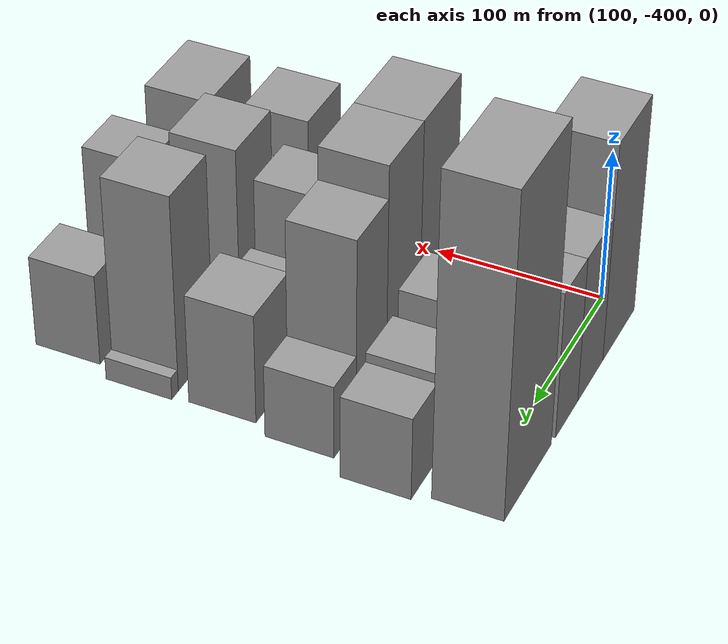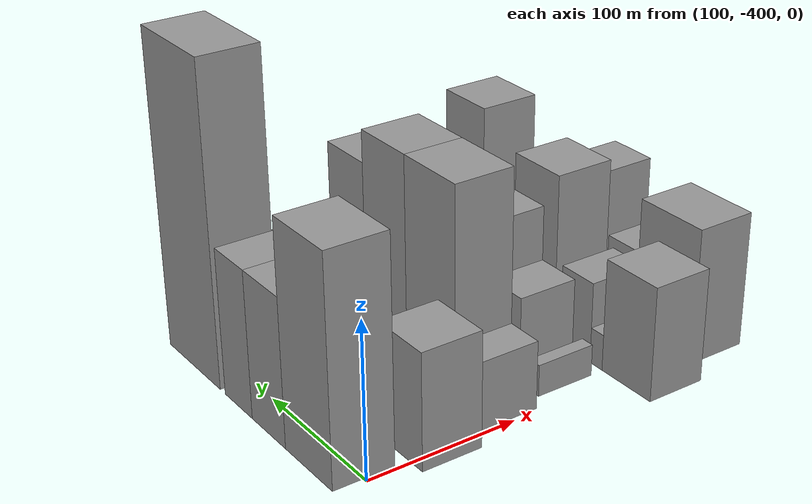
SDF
<sdf version="1.6">
 <world name="default">
  <model name="building_12">
   <static>1</static>
   <pose>100.0000 -373.0268 0 0.000000 0.000000 0.000000</pose>
   <link name="link">
    <pose>0 0 72.00 0 0 0</pose>
    <collision name="collision"><geometry><box><size>40.0000 49.0535 144.0000</size></box></geometry></collision>
    <visual name="visual">
     <cast_shadows>0</cast_shadows>
     <geometry><box><size>40.0000 49.0535 144.0000</size></box></geometry>
     <material>
      <script>
       <uri>model://grey_wall/materials/scripts</uri>
       <uri>model://grey_wall/materials/textures</uri>
       <name>vrc/grey_wall</name>
      </script>
     </material>
    </visual>
   </link>
  </model>
  <model name="building_13">
   <static>1</static>
   <pose>100.0000 -329.8094 0 0.000000 0.000000 0.000000</pose>
   <link name="link">
    <pose>0 0 48.00 0 0 0</pose>
    <collision name="collision"><geometry><box><size>40.0000 37.3814 96.0000</size></box></geometry></collision>
    <visual name="visual">
     <cast_shadows>0</cast_shadows>
     <geometry><box><size>40.0000 37.3814 96.0000</size></box></geometry>
     <material>
      <script>
       <uri>model://grey_wall/materials/scripts</uri>
       <uri>model://grey_wall/materials/textures</uri>
       <name>vrc/grey_wall</name>
      </script>
     </material>
    </visual>
   </link>
  </model>
  <model name="building_14">
   <static>1</static>
   <pose>100.0000 -295.0552 0 0.000000 0.000000 0.000000</pose>
   <link name="link">
    <pose>0 0 48.00 0 0 0</pose>
    <collision name="collision"><geometry><box><size>40.0000 32.1269 96.0000</size></box></geometry></collision>
    <visual name="visual">
     <cast_shadows>0</cast_shadows>
     <geometry><box><size>40.0000 32.1269 96.0000</size></box></geometry>
     <material>
      <script>
       <uri>model://grey_wall/materials/scripts</uri>
       <uri>model://grey_wall/materials/textures</uri>
       <name>vrc/grey_wall</name>
      </script>
     </material>
    </visual>
   </link>
  </model>
  <model name="building_15">
   <static>1</static>
   <pose>100.0000 -240.8266 0 0.000000 0.000000 0.000000</pose>
   <link name="link">
    <pose>0 0 103.50 0 0 0</pose>
    <collision name="collision"><geometry><box><size>40.0000 64.3303 207.0000</size></box></geometry></collision>
    <visual name="visual">
     <cast_shadows>0</cast_shadows>
     <geometry><box><size>40.0000 64.3303 207.0000</size></box></geometry>
     <material>
      <script>
       <uri>model://grey_wall/materials/scripts</uri>
       <uri>model://grey_wall/materials/textures</uri>
       <name>vrc/grey_wall</name>
      </script>
     </material>
    </visual>
   </link>
  </model>
  <model name="building_50">
   <static>1</static>
   <pose>149.0000 -390.0981 0 0.000000 0.000000 0.000000</pose>
   <link name="link">
    <pose>0 0 37.50 0 0 0</pose>
    <collision name="collision"><geometry><box><size>40.0000 41.4963 75.0000</size></box></geometry></collision>
    <visual name="visual">
     <cast_shadows>0</cast_shadows>
     <geometry><box><size>40.0000 41.4963 75.0000</size></box></geometry>
     <material>
      <script>
       <uri>model://grey_wall/materials/scripts</uri>
       <uri>model://grey_wall/materials/textures</uri>
       <name>vrc/grey_wall</name>
      </script>
     </material>
    </visual>
   </link>
  </model>
  <model name="building_51">
   <static>1</static>
   <pose>149.0000 -362.1024 0 0.000000 0.000000 0.000000</pose>
   <link name="link">
    <pose>0 0 9.00 0 0 0</pose>
    <collision name="collision"><geometry><box><size>40.0000 8.4950 18.0000</size></box></geometry></collision>
    <visual name="visual">
     <cast_shadows>0</cast_shadows>
     <geometry><box><size>40.0000 8.4950 18.0000</size></box></geometry>
     <material>
      <script>
       <uri>model://grey_wall/materials/scripts</uri>
       <uri>model://grey_wall/materials/textures</uri>
       <name>vrc/grey_wall</name>
      </script>
     </material>
    </visual>
   </link>
  </model>
  <model name="building_52">
   <static>1</static>
   <pose>149.0000 -341.7077 0 0.000000 0.000000 0.000000</pose>
   <link name="link">
    <pose>0 0 22.50 0 0 0</pose>
    <collision name="collision"><geometry><box><size>40.0000 26.2945 45.0000</size></box></geometry></collision>
    <visual name="visual">
     <cast_shadows>0</cast_shadows>
     <geometry><box><size>40.0000 26.2945 45.0000</size></box></geometry>
     <material>
      <script>
       <uri>model://grey_wall/materials/scripts</uri>
       <uri>model://grey_wall/materials/textures</uri>
       <name>vrc/grey_wall</name>
      </script>
     </material>
    </visual>
   </link>
  </model>
  <model name="building_53">
   <static>1</static>
   <pose>149.0000 -319.5899 0 0.000000 0.000000 0.000000</pose>
   <link name="link">
    <pose>0 0 16.50 0 0 0</pose>
    <collision name="collision"><geometry><box><size>40.0000 17.9410 33.0000</size></box></geometry></collision>
    <visual name="visual">
     <cast_shadows>0</cast_shadows>
     <geometry><box><size>40.0000 17.9410 33.0000</size></box></geometry>
     <material>
      <script>
       <uri>model://grey_wall/materials/scripts</uri>
       <uri>model://grey_wall/materials/textures</uri>
       <name>vrc/grey_wall</name>
      </script>
     </material>
    </visual>
   </link>
  </model>
  <model name="building_54">
   <static>1</static>
   <pose>149.0000 -292.4086 0 0.000000 0.000000 0.000000</pose>
   <link name="link">
    <pose>0 0 36.00 0 0 0</pose>
    <collision name="collision"><geometry><box><size>40.0000 36.4217 72.0000</size></box></geometry></collision>
    <visual name="visual">
     <cast_shadows>0</cast_shadows>
     <geometry><box><size>40.0000 36.4217 72.0000</size></box></geometry>
     <material>
      <script>
       <uri>model://grey_wall/materials/scripts</uri>
       <uri>model://grey_wall/materials/textures</uri>
       <name>vrc/grey_wall</name>
      </script>
     </material>
    </visual>
   </link>
  </model>
  <model name="building_55">
   <static>1</static>
   <pose>149.0000 -270.7496 0 0.000000 0.000000 0.000000</pose>
   <link name="link">
    <pose>0 0 7.50 0 0 0</pose>
    <collision name="collision"><geometry><box><size>40.0000 6.8963 15.0000</size></box></geometry></collision>
    <visual name="visual">
     <cast_shadows>0</cast_shadows>
     <geometry><box><size>40.0000 6.8963 15.0000</size></box></geometry>
     <material>
      <script>
       <uri>model://grey_wall/materials/scripts</uri>
       <uri>model://grey_wall/materials/textures</uri>
       <name>vrc/grey_wall</name>
      </script>
     </material>
    </visual>
   </link>
  </model>
  <model name="building_56">
   <static>1</static>
   <pose>149.0000 -250.5568 0 0.000000 0.000000 0.000000</pose>
   <link name="link">
    <pose>0 0 30.00 0 0 0</pose>
    <collision name="collision"><geometry><box><size>40.0000 33.4891 60.0000</size></box></geometry></collision>
    <visual name="visual">
     <cast_shadows>0</cast_shadows>
     <geometry><box><size>40.0000 33.4891 60.0000</size></box></geometry>
     <material>
      <script>
       <uri>model://grey_wall/materials/scripts</uri>
       <uri>model://grey_wall/materials/textures</uri>
       <name>vrc/grey_wall</name>
      </script>
     </material>
    </visual>
   </link>
  </model>
  <model name="building_57">
   <static>1</static>
   <pose>149.0000 -218.5528 0 0.000000 0.000000 0.000000</pose>
   <link name="link">
    <pose>0 0 27.00 0 0 0</pose>
    <collision name="collision"><geometry><box><size>40.0000 30.5189 54.0000</size></box></geometry></collision>
    <visual name="visual">
     <cast_shadows>0</cast_shadows>
     <geometry><box><size>40.0000 30.5189 54.0000</size></box></geometry>
     <material>
      <script>
       <uri>model://grey_wall/materials/scripts</uri>
       <uri>model://grey_wall/materials/textures</uri>
       <name>vrc/grey_wall</name>
      </script>
     </material>
    </visual>
   </link>
  </model>
  <model name="building_98">
   <static>1</static>
   <pose>198.0000 -385.2307 0 0.000000 0.000000 0.000000</pose>
   <link name="link">
    <pose>0 0 22.50 0 0 0</pose>
    <collision name="collision"><geometry><box><size>40.0000 24.6811 45.0000</size></box></geometry></collision>
    <visual name="visual">
     <cast_shadows>0</cast_shadows>
     <geometry><box><size>40.0000 24.6811 45.0000</size></box></geometry>
     <material>
      <script>
       <uri>model://grey_wall/materials/scripts</uri>
       <uri>model://grey_wall/materials/textures</uri>
       <name>vrc/grey_wall</name>
      </script>
     </material>
    </visual>
   </link>
  </model>
  <model name="building_99">
   <static>1</static>
   <pose>198.0000 -348.5359 0 0.000000 0.000000 0.000000</pose>
   <link name="link">
    <pose>0 0 72.00 0 0 0</pose>
    <collision name="collision"><geometry><box><size>40.0000 48.7085 144.0000</size></box></geometry></collision>
    <visual name="visual">
     <cast_shadows>0</cast_shadows>
     <geometry><box><size>40.0000 48.7085 144.0000</size></box></geometry>
     <material>
      <script>
       <uri>model://grey_wall/materials/scripts</uri>
       <uri>model://grey_wall/materials/textures</uri>
       <name>vrc/grey_wall</name>
      </script>
     </material>
    </visual>
   </link>
  </model>
  <model name="building_100">
   <static>1</static>
   <pose>198.0000 -302.3318 0 0.000000 0.000000 0.000000</pose>
   <link name="link">
    <pose>0 0 72.00 0 0 0</pose>
    <collision name="collision"><geometry><box><size>40.0000 43.6997 144.0000</size></box></geometry></collision>
    <visual name="visual">
     <cast_shadows>0</cast_shadows>
     <geometry><box><size>40.0000 43.6997 144.0000</size></box></geometry>
     <material>
      <script>
       <uri>model://grey_wall/materials/scripts</uri>
       <uri>model://grey_wall/materials/textures</uri>
       <name>vrc/grey_wall</name>
      </script>
     </material>
    </visual>
   </link>
  </model>
  <model name="building_101">
   <static>1</static>
   <pose>198.0000 -261.3246 0 0.000000 0.000000 0.000000</pose>
   <link name="link">
    <pose>0 0 61.50 0 0 0</pose>
    <collision name="collision"><geometry><box><size>40.0000 38.3147 123.0000</size></box></geometry></collision>
    <visual name="visual">
     <cast_shadows>0</cast_shadows>
     <geometry><box><size>40.0000 38.3147 123.0000</size></box></geometry>
     <material>
      <script>
       <uri>model://grey_wall/materials/scripts</uri>
       <uri>model://grey_wall/materials/textures</uri>
       <name>vrc/grey_wall</name>
      </script>
     </material>
    </visual>
   </link>
  </model>
  <model name="building_102">
   <static>1</static>
   <pose>198.0000 -228.6058 0 0.000000 0.000000 0.000000</pose>
   <link name="link">
    <pose>0 0 24.00 0 0 0</pose>
    <collision name="collision"><geometry><box><size>40.0000 27.1228 48.0000</size></box></geometry></collision>
    <visual name="visual">
     <cast_shadows>0</cast_shadows>
     <geometry><box><size>40.0000 27.1228 48.0000</size></box></geometry>
     <material>
      <script>
       <uri>model://grey_wall/materials/scripts</uri>
       <uri>model://grey_wall/materials/textures</uri>
       <name>vrc/grey_wall</name>
      </script>
     </material>
    </visual>
   </link>
  </model>
  <model name="building_148">
   <static>1</static>
   <pose>247.0000 -383.6363 0 0.000000 0.000000 0.000000</pose>
   <link name="link">
    <pose>0 0 10.50 0 0 0</pose>
    <collision name="collision"><geometry><box><size>40.0000 9.0646 21.0000</size></box></geometry></collision>
    <visual name="visual">
     <cast_shadows>0</cast_shadows>
     <geometry><box><size>40.0000 9.0646 21.0000</size></box></geometry>
     <material>
      <script>
       <uri>model://grey_wall/materials/scripts</uri>
       <uri>model://grey_wall/materials/textures</uri>
       <name>vrc/grey_wall</name>
      </script>
     </material>
    </visual>
   </link>
  </model>
  <model name="building_149">
   <static>1</static>
   <pose>247.0000 -354.8018 0 0.000000 0.000000 0.000000</pose>
   <link name="link">
    <pose>0 0 28.50 0 0 0</pose>
    <collision name="collision"><geometry><box><size>40.0000 30.6044 57.0000</size></box></geometry></collision>
    <visual name="visual">
     <cast_shadows>0</cast_shadows>
     <geometry><box><size>40.0000 30.6044 57.0000</size></box></geometry>
     <material>
      <script>
       <uri>model://grey_wall/materials/scripts</uri>
       <uri>model://grey_wall/materials/textures</uri>
       <name>vrc/grey_wall</name>
      </script>
     </material>
    </visual>
   </link>
  </model>
  <model name="building_150">
   <static>1</static>
   <pose>247.0000 -321.1986 0 0.000000 0.000000 0.000000</pose>
   <link name="link">
    <pose>0 0 46.50 0 0 0</pose>
    <collision name="collision"><geometry><box><size>40.0000 36.6021 93.0000</size></box></geometry></collision>
    <visual name="visual">
     <cast_shadows>0</cast_shadows>
     <geometry><box><size>40.0000 36.6021 93.0000</size></box></geometry>
     <material>
      <script>
       <uri>model://grey_wall/materials/scripts</uri>
       <uri>model://grey_wall/materials/textures</uri>
       <name>vrc/grey_wall</name>
      </script>
     </material>
    </visual>
   </link>
  </model>
  <model name="building_151">
   <static>1</static>
   <pose>247.0000 -283.9694 0 0.000000 0.000000 0.000000</pose>
   <link name="link">
    <pose>0 0 25.50 0 0 0</pose>
    <collision name="collision"><geometry><box><size>40.0000 27.8563 51.0000</size></box></geometry></collision>
    <visual name="visual">
     <cast_shadows>0</cast_shadows>
     <geometry><box><size>40.0000 27.8563 51.0000</size></box></geometry>
     <material>
      <script>
       <uri>model://grey_wall/materials/scripts</uri>
       <uri>model://grey_wall/materials/textures</uri>
       <name>vrc/grey_wall</name>
      </script>
     </material>
    </visual>
   </link>
  </model>
  <model name="building_152">
   <static>1</static>
   <pose>247.0000 -242.7623 0 0.000000 0.000000 0.000000</pose>
   <link name="link">
    <pose>0 0 36.00 0 0 0</pose>
    <collision name="collision"><geometry><box><size>40.0000 40.5579 72.0000</size></box></geometry></collision>
    <visual name="visual">
     <cast_shadows>0</cast_shadows>
     <geometry><box><size>40.0000 40.5579 72.0000</size></box></geometry>
     <material>
      <script>
       <uri>model://grey_wall/materials/scripts</uri>
       <uri>model://grey_wall/materials/textures</uri>
       <name>vrc/grey_wall</name>
      </script>
     </material>
    </visual>
   </link>
  </model>
  <model name="building_194">
   <static>1</static>
   <pose>296.0000 -409.0235 0 0.000000 0.000000 0.000000</pose>
   <link name="link">
    <pose>0 0 37.50 0 0 0</pose>
    <collision name="collision"><geometry><box><size>40.0000 42.9086 75.0000</size></box></geometry></collision>
    <visual name="visual">
     <cast_shadows>0</cast_shadows>
     <geometry><box><size>40.0000 42.9086 75.0000</size></box></geometry>
     <material>
      <script>
       <uri>model://grey_wall/materials/scripts</uri>
       <uri>model://grey_wall/materials/textures</uri>
       <name>vrc/grey_wall</name>
      </script>
     </material>
    </visual>
   </link>
  </model>
  <model name="building_195">
   <static>1</static>
   <pose>296.0000 -382.0107 0 0.000000 0.000000 0.000000</pose>
   <link name="link">
    <pose>0 0 12.00 0 0 0</pose>
    <collision name="collision"><geometry><box><size>40.0000 11.1169 24.0000</size></box></geometry></collision>
    <visual name="visual">
     <cast_shadows>0</cast_shadows>
     <geometry><box><size>40.0000 11.1169 24.0000</size></box></geometry>
     <material>
      <script>
       <uri>model://grey_wall/materials/scripts</uri>
       <uri>model://grey_wall/materials/textures</uri>
       <name>vrc/grey_wall</name>
      </script>
     </material>
    </visual>
   </link>
  </model>
  <model name="building_196">
   <static>1</static>
   <pose>296.0000 -362.2135 0 0.000000 0.000000 0.000000</pose>
   <link name="link">
    <pose>0 0 27.00 0 0 0</pose>
    <collision name="collision"><geometry><box><size>40.0000 28.4775 54.0000</size></box></geometry></collision>
    <visual name="visual">
     <cast_shadows>0</cast_shadows>
     <geometry><box><size>40.0000 28.4775 54.0000</size></box></geometry>
     <material>
      <script>
       <uri>model://grey_wall/materials/scripts</uri>
       <uri>model://grey_wall/materials/textures</uri>
       <name>vrc/grey_wall</name>
      </script>
     </material>
    </visual>
   </link>
  </model>
  <model name="building_197">
   <static>1</static>
   <pose>296.0000 -321.1158 0 0.000000 0.000000 0.000000</pose>
   <link name="link">
    <pose>0 0 55.50 0 0 0</pose>
    <collision name="collision"><geometry><box><size>40.0000 41.7178 111.0000</size></box></geometry></collision>
    <visual name="visual">
     <cast_shadows>0</cast_shadows>
     <geometry><box><size>40.0000 41.7178 111.0000</size></box></geometry>
     <material>
      <script>
       <uri>model://grey_wall/materials/scripts</uri>
       <uri>model://grey_wall/materials/textures</uri>
       <name>vrc/grey_wall</name>
      </script>
     </material>
    </visual>
   </link>
  </model>
  <model name="building_198">
   <static>1</static>
   <pose>296.0000 -295.8527 0 0.000000 0.000000 0.000000</pose>
   <link name="link">
    <pose>0 0 10.50 0 0 0</pose>
    <collision name="collision"><geometry><box><size>40.0000 8.8083 21.0000</size></box></geometry></collision>
    <visual name="visual">
     <cast_shadows>0</cast_shadows>
     <geometry><box><size>40.0000 8.8083 21.0000</size></box></geometry>
     <material>
      <script>
       <uri>model://grey_wall/materials/scripts</uri>
       <uri>model://grey_wall/materials/textures</uri>
       <name>vrc/grey_wall</name>
      </script>
     </material>
    </visual>
   </link>
  </model>
  <model name="building_199">
   <static>1</static>
   <pose>296.0000 -278.1027 0 0.000000 0.000000 0.000000</pose>
   <link name="link">
    <pose>0 0 19.50 0 0 0</pose>
    <collision name="collision"><geometry><box><size>40.0000 20.6919 39.0000</size></box></geometry></collision>
    <visual name="visual">
     <cast_shadows>0</cast_shadows>
     <geometry><box><size>40.0000 20.6919 39.0000</size></box></geometry>
     <material>
      <script>
       <uri>model://grey_wall/materials/scripts</uri>
       <uri>model://grey_wall/materials/textures</uri>
       <name>vrc/grey_wall</name>
      </script>
     </material>
    </visual>
   </link>
  </model>
  <model name="building_200">
   <static>1</static>
   <pose>296.0000 -247.6811 0 0.000000 0.000000 0.000000</pose>
   <link name="link">
    <pose>0 0 64.50 0 0 0</pose>
    <collision name="collision"><geometry><box><size>40.0000 40.1512 129.0000</size></box></geometry></collision>
    <visual name="visual">
     <cast_shadows>0</cast_shadows>
     <geometry><box><size>40.0000 40.1512 129.0000</size></box></geometry>
     <material>
      <script>
       <uri>model://grey_wall/materials/scripts</uri>
       <uri>model://grey_wall/materials/textures</uri>
       <name>vrc/grey_wall</name>
      </script>
     </material>
    </visual>
   </link>
  </model>
  <model name="building_201">
   <static>1</static>
   <pose>296.0000 -223.9058 0 0.000000 0.000000 0.000000</pose>
   <link name="link">
    <pose>0 0 7.50 0 0 0</pose>
    <collision name="collision"><geometry><box><size>40.0000 7.3995 15.0000</size></box></geometry></collision>
    <visual name="visual">
     <cast_shadows>0</cast_shadows>
     <geometry><box><size>40.0000 7.3995 15.0000</size></box></geometry>
     <material>
      <script>
       <uri>model://grey_wall/materials/scripts</uri>
       <uri>model://grey_wall/materials/textures</uri>
       <name>vrc/grey_wall</name>
      </script>
     </material>
    </visual>
   </link>
  </model>
  <model name="building_245">
   <static>1</static>
   <pose>345.0000 -387.4278 0 0.000000 0.000000 0.000000</pose>
   <link name="link">
    <pose>0 0 45.00 0 0 0</pose>
    <collision name="collision"><geometry><box><size>40.0000 51.9498 90.0000</size></box></geometry></collision>
    <visual name="visual">
     <cast_shadows>0</cast_shadows>
     <geometry><box><size>40.0000 51.9498 90.0000</size></box></geometry>
     <material>
      <script>
       <uri>model://grey_wall/materials/scripts</uri>
       <uri>model://grey_wall/materials/textures</uri>
       <name>vrc/grey_wall</name>
      </script>
     </material>
    </visual>
   </link>
  </model>
  <model name="building_246">
   <static>1</static>
   <pose>345.0000 -347.3774 0 0.000000 0.000000 0.000000</pose>
   <link name="link">
    <pose>0 0 27.00 0 0 0</pose>
    <collision name="collision"><geometry><box><size>40.0000 28.1510 54.0000</size></box></geometry></collision>
    <visual name="visual">
     <cast_shadows>0</cast_shadows>
     <geometry><box><size>40.0000 28.1510 54.0000</size></box></geometry>
     <material>
      <script>
       <uri>model://grey_wall/materials/scripts</uri>
       <uri>model://grey_wall/materials/textures</uri>
       <name>vrc/grey_wall</name>
      </script>
     </material>
    </visual>
   </link>
  </model>
  <model name="building_247">
   <static>1</static>
   <pose>345.0000 -307.4286 0 0.000000 0.000000 0.000000</pose>
   <link name="link">
    <pose>0 0 46.50 0 0 0</pose>
    <collision name="collision"><geometry><box><size>40.0000 33.7466 93.0000</size></box></geometry></collision>
    <visual name="visual">
     <cast_shadows>0</cast_shadows>
     <geometry><box><size>40.0000 33.7466 93.0000</size></box></geometry>
     <material>
      <script>
       <uri>model://grey_wall/materials/scripts</uri>
       <uri>model://grey_wall/materials/textures</uri>
       <name>vrc/grey_wall</name>
      </script>
     </material>
    </visual>
   </link>
  </model>
  <model name="building_248">
   <static>1</static>
   <pose>345.0000 -281.1662 0 0.000000 0.000000 0.000000</pose>
   <link name="link">
    <pose>0 0 16.50 0 0 0</pose>
    <collision name="collision"><geometry><box><size>40.0000 18.7781 33.0000</size></box></geometry></collision>
    <visual name="visual">
     <cast_shadows>0</cast_shadows>
     <geometry><box><size>40.0000 18.7781 33.0000</size></box></geometry>
     <material>
      <script>
       <uri>model://grey_wall/materials/scripts</uri>
       <uri>model://grey_wall/materials/textures</uri>
       <name>vrc/grey_wall</name>
      </script>
     </material>
    </visual>
   </link>
  </model>
  <model name="building_249">
   <static>1</static>
   <pose>345.0000 -246.1431 0 0.000000 0.000000 0.000000</pose>
   <link name="link">
    <pose>0 0 30.00 0 0 0</pose>
    <collision name="collision"><geometry><box><size>40.0000 33.2680 60.0000</size></box></geometry></collision>
    <visual name="visual">
     <cast_shadows>0</cast_shadows>
     <geometry><box><size>40.0000 33.2680 60.0000</size></box></geometry>
     <material>
      <script>
       <uri>model://grey_wall/materials/scripts</uri>
       <uri>model://grey_wall/materials/textures</uri>
       <name>vrc/grey_wall</name>
      </script>
     </material>
    </visual>
   </link>
  </model>
 </world>
</sdf>
